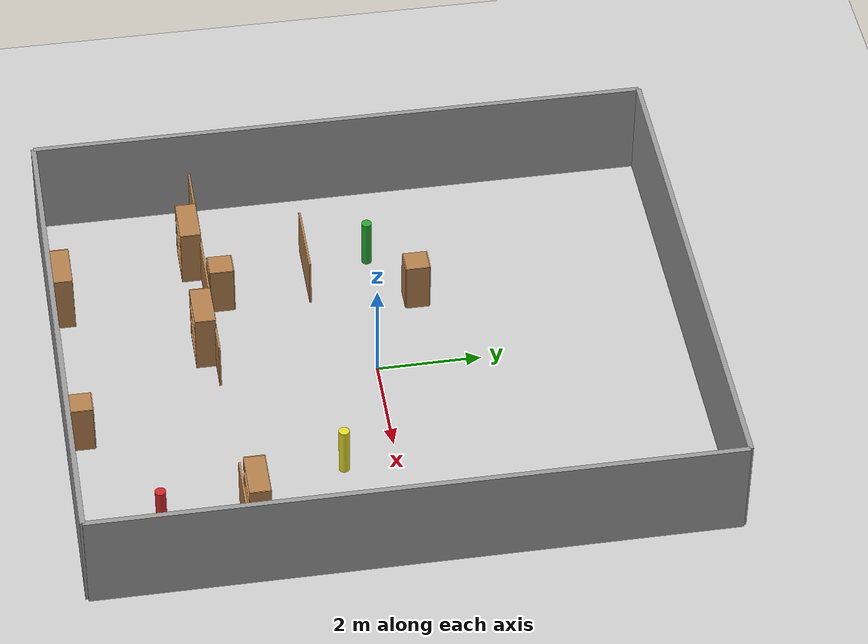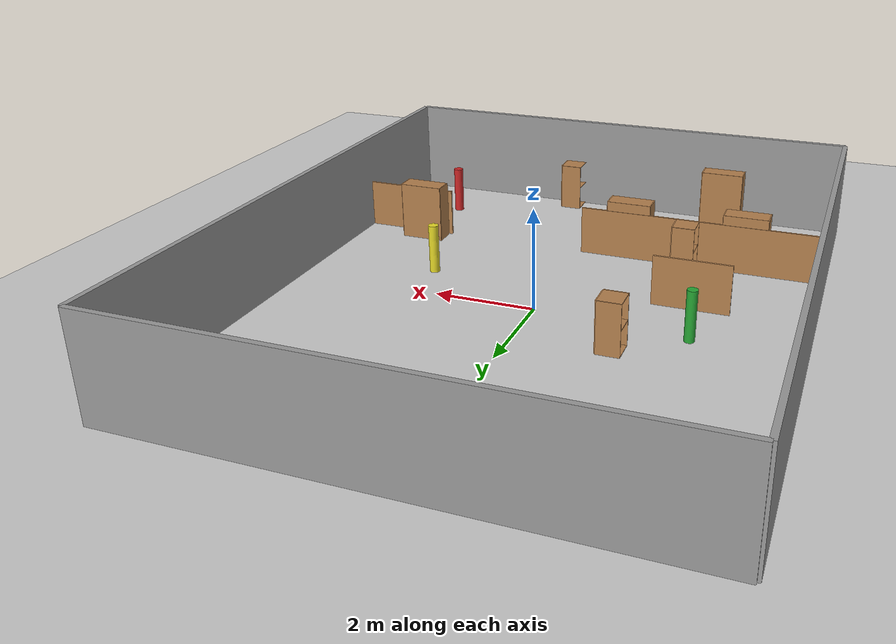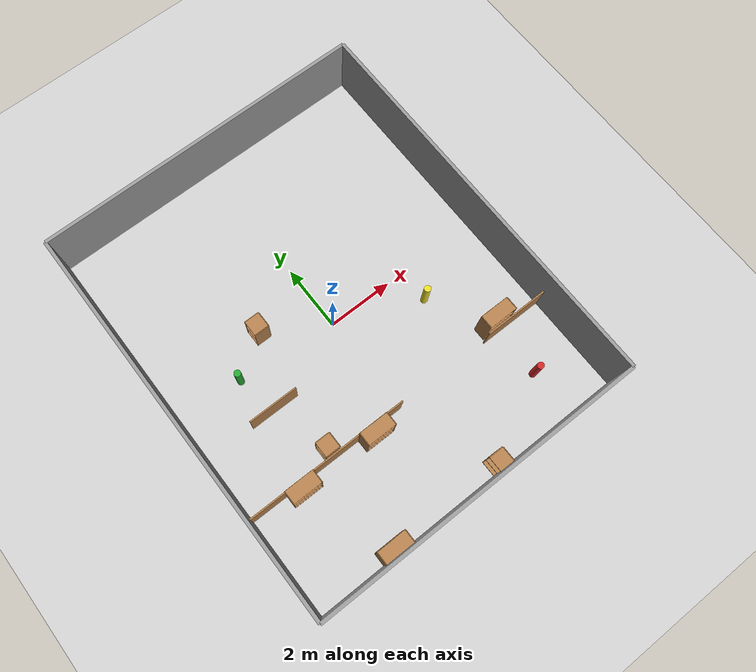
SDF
<sdf version="1.4">
 <world name="default">
  <model name="ground_plane">
   <static>1</static>
   <link name="link">
    <collision name="collision">
     <geometry><plane><normal>0 0 1</normal><size>50 50</size></plane></geometry>
     <surface><friction><ode><mu>100</mu><mu2>50</mu2></ode></friction></surface>
    </collision>
    <visual name="visual">
     <cast_shadows>0</cast_shadows>
     <geometry><plane><normal>0 0 1</normal><size>100 100</size></plane></geometry>
     <material>
      <script><uri>file://media/materials/scripts/gazebo.material</uri><name>Gazebo/Grey</name></script>
     </material>
    </visual>
    <velocity_decay><linear>0</linear><angular>0</angular></velocity_decay>
   </link>
  </model>
  <model name="target_cylinder_A">
   <pose>3.5 -4.5 0.5 0 -0 0</pose>
   <link name="link">
    <inertial>
     <mass>1</mass>
     <inertia><ixx>1</ixx><ixy>0</ixy><ixz>0</ixz><iyy>1</iyy><iyz>0</iyz><izz>1</izz></inertia>
    </inertial>
    <collision name="collision">
     <geometry><cylinder><radius>0.1</radius><length>1</length></cylinder></geometry>
    </collision>
    <visual name="visual">
     <geometry><cylinder><radius>0.1</radius><length>1</length></cylinder></geometry>
     <material>
      <script><uri>file://media/materials/scripts/gazebo.material</uri><name>Gazebo/Red</name></script>
     </material>
    </visual>
    <velocity_decay><linear>0</linear><angular>0</angular></velocity_decay>
   </link>
   <static>1</static>
  </model>
  <model name="target_cylinder_B">
   <pose>2.5 -1 0.5 0 -0 0</pose>
   <link name="link">
    <inertial>
     <mass>1</mass>
     <inertia><ixx>1</ixx><ixy>0</ixy><ixz>0</ixz><iyy>1</iyy><iyz>0</iyz><izz>1</izz></inertia>
    </inertial>
    <collision name="collision">
     <geometry><cylinder><radius>0.1</radius><length>1</length></cylinder></geometry>
    </collision>
    <visual name="visual">
     <geometry><cylinder><radius>0.1</radius><length>1</length></cylinder></geometry>
     <material>
      <script><uri>file://media/materials/scripts/gazebo.material</uri><name>Gazebo/Yellow</name></script>
     </material>
    </visual>
    <velocity_decay><linear>0</linear><angular>0</angular></velocity_decay>
   </link>
   <static>1</static>
  </model>
  <model name="target_cylinder_D">
   <pose>-3 0.25 0.5 0 -0 0</pose>
   <link name="link">
    <inertial>
     <mass>1</mass>
     <inertia><ixx>1</ixx><ixy>0</ixy><ixz>0</ixz><iyy>1</iyy><iyz>0</iyz><izz>1</izz></inertia>
    </inertial>
    <collision name="collision">
     <geometry><cylinder><radius>0.1</radius><length>1</length></cylinder></geometry>
    </collision>
    <visual name="visual">
     <geometry><cylinder><radius>0.1</radius><length>1</length></cylinder></geometry>
     <material>
      <script><uri>file://media/materials/scripts/gazebo.material</uri><name>Gazebo/Green</name></script>
     </material>
    </visual>
    <velocity_decay><linear>0</linear><angular>0</angular></velocity_decay>
   </link>
   <static>1</static>
  </model>
  <model name="grey_wall_1">
   <static>1</static>
   <link name="link">
    <pose>0 -6 1 0 -0 0</pose>
    <collision name="collision"><geometry><box><size>10 0.1 2</size></box></geometry></collision>
    <visual name="visual">
     <cast_shadows>0</cast_shadows>
     <geometry><box><size>10 0.1 2</size></box></geometry>
     <material>
      <script>
       <uri>model://grey_wall/materials/scripts</uri>
       <uri>model://grey_wall/materials/textures</uri>
       <name>vrc/grey_wall</name>
      </script>
     </material>
    </visual>
    <velocity_decay><linear>0</linear><angular>0</angular></velocity_decay>
   </link>
  </model>
  <model name="grey_wall_2">
   <static>1</static>
   <link name="link">
    <pose>0 6 1 0 -0 0</pose>
    <collision name="collision"><geometry><box><size>10 0.1 2</size></box></geometry></collision>
    <visual name="visual">
     <cast_shadows>0</cast_shadows>
     <geometry><box><size>10 0.1 2</size></box></geometry>
     <material>
      <script>
       <uri>model://grey_wall/materials/scripts</uri>
       <uri>model://grey_wall/materials/textures</uri>
       <name>vrc/grey_wall</name>
      </script>
     </material>
    </visual>
    <velocity_decay><linear>0</linear><angular>0</angular></velocity_decay>
   </link>
  </model>
  <model name="grey_wall_3">
   <static>1</static>
   <link name="link">
    <pose>-5 0 1 0 -0 1.571</pose>
    <collision name="collision"><geometry><box><size>12 0.1 2</size></box></geometry></collision>
    <visual name="visual">
     <cast_shadows>0</cast_shadows>
     <geometry><box><size>12 0.1 2</size></box></geometry>
     <material>
      <script>
       <uri>model://grey_wall/materials/scripts</uri>
       <uri>model://grey_wall/materials/textures</uri>
       <name>vrc/grey_wall</name>
      </script>
     </material>
    </visual>
    <velocity_decay><linear>0</linear><angular>0</angular></velocity_decay>
   </link>
  </model>
  <model name="grey_wall_4">
   <static>1</static>
   <link name="link">
    <pose>5 0 1 0 -0 1.571</pose>
    <collision name="collision"><geometry><box><size>12 0.1 2</size></box></geometry></collision>
    <visual name="visual">
     <cast_shadows>0</cast_shadows>
     <geometry><box><size>12 0.1 2</size></box></geometry>
     <material>
      <script>
       <uri>model://grey_wall/materials/scripts</uri>
       <uri>model://grey_wall/materials/textures</uri>
       <name>vrc/grey_wall</name>
      </script>
     </material>
    </visual>
    <velocity_decay><linear>0</linear><angular>0</angular></velocity_decay>
   </link>
  </model>
  <model name="high_wall_1">
   <pose>-2.5 -3 0.5 0 -0 0</pose>
   <link name="link">
    <inertial>
     <mass>1</mass>
     <inertia><ixx>1</ixx><ixy>0</ixy><ixz>0</ixz><iyy>1</iyy><iyz>0</iyz><izz>1</izz></inertia>
    </inertial>
    <collision name="collision"><geometry><box><size>5 0.04 1</size></box></geometry></collision>
    <visual name="visual">
     <geometry><box><size>5 0.04 1</size></box></geometry>
     <material>
      <script><uri>file://media/materials/scripts/gazebo.material</uri><name>Gazebo/Wood</name></script>
     </material>
    </visual>
    <velocity_decay><linear>0</linear><angular>0</angular></velocity_decay>
   </link>
   <static>1</static>
  </model>
  <model name="high_wall_2">
   <pose>4 -3 0.5 0 -0 0</pose>
   <link name="link">
    <inertial>
     <mass>1</mass>
     <inertia><ixx>1</ixx><ixy>0</ixy><ixz>0</ixz><iyy>1</iyy><iyz>0</iyz><izz>1</izz></inertia>
    </inertial>
    <collision name="collision"><geometry><box><size>2 0.04 1</size></box></geometry></collision>
    <visual name="visual">
     <geometry><box><size>2 0.04 1</size></box></geometry>
     <material>
      <script><uri>file://media/materials/scripts/gazebo.material</uri><name>Gazebo/Wood</name></script>
     </material>
    </visual>
    <velocity_decay><linear>0</linear><angular>0</angular></velocity_decay>
   </link>
   <static>1</static>
  </model>
  <model name="high_wall_5">
   <pose>-2.75 -1 0.5 0 -0 0</pose>
   <link name="link">
    <inertial>
     <mass>1</mass>
     <inertia><ixx>1</ixx><ixy>0</ixy><ixz>0</ixz><iyy>1</iyy><iyz>0</iyz><izz>1</izz></inertia>
    </inertial>
    <collision name="collision"><geometry><box><size>1.5 0.04 1</size></box></geometry></collision>
    <visual name="visual">
     <geometry><box><size>1.5 0.04 1</size></box></geometry>
     <material>
      <script><uri>file://media/materials/scripts/gazebo.material</uri><name>Gazebo/Wood</name></script>
     </material>
    </visual>
    <velocity_decay><linear>0</linear><angular>0</angular></velocity_decay>
   </link>
   <static>1</static>
  </model>
  <model name="bookshelf">
   <static>1</static>
   <link name="link">
    <inertial><mass>1</mass></inertial>
    <collision name="back">
     <pose>0 0.005 0.6 0 -0 0</pose>
     <geometry><box><size>0.9 0.01 1.2</size></box></geometry>
    </collision>
    <visual name="visual1">
     <pose>0 0.005 0.6 0 -0 0</pose>
     <geometry><box><size>0.9 0.01 1.2</size></box></geometry>
     <material>
      <script><uri>file://media/materials/scripts/gazebo.material</uri><name>Gazebo/Wood</name></script>
     </material>
    </visual>
    <collision name="left_side">
     <pose>0.45 -0.195 0.6 0 -0 0</pose>
     <geometry><box><size>0.02 0.4 1.2</size></box></geometry>
    </collision>
    <visual name="visual2">
     <pose>0.45 -0.195 0.6 0 -0 0</pose>
     <geometry><box><size>0.02 0.4 1.2</size></box></geometry>
     <material>
      <script><uri>file://media/materials/scripts/gazebo.material</uri><name>Gazebo/Wood</name></script>
     </material>
    </visual>
    <collision name="right_side">
     <pose>-0.45 -0.195 0.6 0 -0 0</pose>
     <geometry><box><size>0.02 0.4 1.2</size></box></geometry>
    </collision>
    <visual name="visual3">
     <pose>-0.45 -0.195 0.6 0 -0 0</pose>
     <geometry><box><size>0.02 0.4 1.2</size></box></geometry>
     <material>
      <script><uri>file://media/materials/scripts/gazebo.material</uri><name>Gazebo/Wood</name></script>
     </material>
    </visual>
    <collision name="bottom">
     <pose>0 -0.195 0.03 0 -0 0</pose>
     <geometry><box><size>0.88 0.4 0.06</size></box></geometry>
    </collision>
    <visual name="visual4">
     <pose>0 -0.195 0.03 0 -0 0</pose>
     <geometry><box><size>0.88 0.4 0.06</size></box></geometry>
     <material>
      <script><uri>file://media/materials/scripts/gazebo.material</uri><name>Gazebo/Wood</name></script>
     </material>
    </visual>
    <collision name="top">
     <pose>0 -0.195 1.19 0 -0 0</pose>
     <geometry><box><size>0.88 0.4 0.02</size></box></geometry>
    </collision>
    <visual name="visual5">
     <pose>0 -0.195 1.19 0 -0 0</pose>
     <geometry><box><size>0.88 0.4 0.02</size></box></geometry>
     <material>
      <script><uri>file://media/materials/scripts/gazebo.material</uri><name>Gazebo/Wood</name></script>
     </material>
    </visual>
    <collision name="low_shelf">
     <pose>0 -0.195 0.43 0 -0 0</pose>
     <geometry><box><size>0.88 0.4 0.02</size></box></geometry>
    </collision>
    <visual name="visual6">
     <pose>0 -0.195 0.43 0 -0 0</pose>
     <geometry><box><size>0.88 0.4 0.02</size></box></geometry>
     <material>
      <script><uri>file://media/materials/scripts/gazebo.material</uri><name>Gazebo/Wood</name></script>
     </material>
    </visual>
    <collision name="high_shelf">
     <pose>0 -0.195 0.8 0 -0 0</pose>
     <geometry><box><size>0.88 0.4 0.02</size></box></geometry>
    </collision>
    <visual name="visual7">
     <pose>0 -0.195 0.8 0 -0 0</pose>
     <geometry><box><size>0.88 0.4 0.02</size></box></geometry>
     <material>
      <script><uri>file://media/materials/scripts/gazebo.material</uri><name>Gazebo/Wood</name></script>
     </material>
    </visual>
    <velocity_decay><linear>0</linear><angular>0</angular></velocity_decay>
   </link>
   <pose>-3.40176 -3 0 0 -0 0</pose>
  </model>
  <model name="bookshelf_0">
   <static>1</static>
   <link name="link">
    <inertial><mass>1</mass></inertial>
    <collision name="back">
     <pose>0 0.005 0.6 0 -0 0</pose>
     <geometry><box><size>0.9 0.01 1.2</size></box></geometry>
    </collision>
    <visual name="visual1">
     <pose>0 0.005 0.6 0 -0 0</pose>
     <geometry><box><size>0.9 0.01 1.2</size></box></geometry>
     <material>
      <script><uri>file://media/materials/scripts/gazebo.material</uri><name>Gazebo/Wood</name></script>
     </material>
    </visual>
    <collision name="left_side">
     <pose>0.45 -0.195 0.6 0 -0 0</pose>
     <geometry><box><size>0.02 0.4 1.2</size></box></geometry>
    </collision>
    <visual name="visual2">
     <pose>0.45 -0.195 0.6 0 -0 0</pose>
     <geometry><box><size>0.02 0.4 1.2</size></box></geometry>
     <material>
      <script><uri>file://media/materials/scripts/gazebo.material</uri><name>Gazebo/Wood</name></script>
     </material>
    </visual>
    <collision name="right_side">
     <pose>-0.45 -0.195 0.6 0 -0 0</pose>
     <geometry><box><size>0.02 0.4 1.2</size></box></geometry>
    </collision>
    <visual name="visual3">
     <pose>-0.45 -0.195 0.6 0 -0 0</pose>
     <geometry><box><size>0.02 0.4 1.2</size></box></geometry>
     <material>
      <script><uri>file://media/materials/scripts/gazebo.material</uri><name>Gazebo/Wood</name></script>
     </material>
    </visual>
    <collision name="bottom">
     <pose>0 -0.195 0.03 0 -0 0</pose>
     <geometry><box><size>0.88 0.4 0.06</size></box></geometry>
    </collision>
    <visual name="visual4">
     <pose>0 -0.195 0.03 0 -0 0</pose>
     <geometry><box><size>0.88 0.4 0.06</size></box></geometry>
     <material>
      <script><uri>file://media/materials/scripts/gazebo.material</uri><name>Gazebo/Wood</name></script>
     </material>
    </visual>
    <collision name="top">
     <pose>0 -0.195 1.19 0 -0 0</pose>
     <geometry><box><size>0.88 0.4 0.02</size></box></geometry>
    </collision>
    <visual name="visual5">
     <pose>0 -0.195 1.19 0 -0 0</pose>
     <geometry><box><size>0.88 0.4 0.02</size></box></geometry>
     <material>
      <script><uri>file://media/materials/scripts/gazebo.material</uri><name>Gazebo/Wood</name></script>
     </material>
    </visual>
    <collision name="low_shelf">
     <pose>0 -0.195 0.43 0 -0 0</pose>
     <geometry><box><size>0.88 0.4 0.02</size></box></geometry>
    </collision>
    <visual name="visual6">
     <pose>0 -0.195 0.43 0 -0 0</pose>
     <geometry><box><size>0.88 0.4 0.02</size></box></geometry>
     <material>
      <script><uri>file://media/materials/scripts/gazebo.material</uri><name>Gazebo/Wood</name></script>
     </material>
    </visual>
    <collision name="high_shelf">
     <pose>0 -0.195 0.8 0 -0 0</pose>
     <geometry><box><size>0.88 0.4 0.02</size></box></geometry>
    </collision>
    <visual name="visual7">
     <pose>0 -0.195 0.8 0 -0 0</pose>
     <geometry><box><size>0.88 0.4 0.02</size></box></geometry>
     <material>
      <script><uri>file://media/materials/scripts/gazebo.material</uri><name>Gazebo/Wood</name></script>
     </material>
    </visual>
    <velocity_decay><linear>0</linear><angular>0</angular></velocity_decay>
   </link>
   <pose>-1 -3 0 0 -0 0</pose>
  </model>
  <model name="cabinet">
   <static>1</static>
   <link name="cabinet_bottom_plate">
    <inertial>
     <pose>0 0 -1 0 -0 0</pose>
     <inertia><ixx>2.05</ixx><ixy>0</ixy><ixz>0</ixz><iyy>2.05</iyy><iyz>0</iyz><izz>2.05</izz></inertia>
     <mass>25</mass>
    </inertial>
    <collision name="cabinet_bottom_plate_geom">
     <pose>0 0 0.01 0 -0 0</pose>
     <geometry><box><size>0.45 0.45 0.02</size></box></geometry>
    </collision>
    <visual name="cabinet_bottom_plate_geom_visual">
     <pose>0 0 0.01 0 -0 0</pose>
     <geometry><box><size>0.45 0.45 0.02</size></box></geometry>
     <material>
      <script><uri>file://media/materials/scripts/gazebo.material</uri><name>Gazebo/Wood</name></script>
     </material>
    </visual>
    <collision name="cabinet_bottom_plate_geom_cabinet_back_plate">
     <pose>0.235 0 0.51 0 -0 0</pose>
     <geometry><box><size>0.02 0.45 1.02</size></box></geometry>
    </collision>
    <visual name="cabinet_bottom_plate_geom_cabinet_back_plate_visual">
     <pose>0.235 0 0.51 0 -0 0</pose>
     <geometry><box><size>0.02 0.45 1.02</size></box></geometry>
     <material>
      <script><uri>file://media/materials/scripts/gazebo.material</uri><name>Gazebo/Wood</name></script>
     </material>
    </visual>
    <collision name="cabinet_bottom_plate_geom_cabinet_left_plate">
     <pose>0 0.235 0.51 0 -0 0</pose>
     <geometry><box><size>0.45 0.02 1.02</size></box></geometry>
    </collision>
    <visual name="cabinet_bottom_plate_geom_cabinet_left_plate_visual">
     <pose>0 0.235 0.51 0 -0 0</pose>
     <geometry><box><size>0.45 0.02 1.02</size></box></geometry>
     <material>
      <script><uri>file://media/materials/scripts/gazebo.material</uri><name>Gazebo/Wood</name></script>
     </material>
    </visual>
    <collision name="cabinet_bottom_plate_geom_cabinet_middle_plate">
     <pose>0 0 0.51 0 -0 0</pose>
     <geometry><box><size>0.45 0.45 0.02</size></box></geometry>
    </collision>
    <visual name="cabinet_bottom_plate_geom_cabinet_middle_plate_visual">
     <pose>0 0 0.51 0 -0 0</pose>
     <geometry><box><size>0.45 0.45 0.02</size></box></geometry>
     <material>
      <script><uri>file://media/materials/scripts/gazebo.material</uri><name>Gazebo/Wood</name></script>
     </material>
    </visual>
    <collision name="cabinet_bottom_plate_geom_cabinet_right_plate">
     <pose>0 -0.235 0.51 0 -0 0</pose>
     <geometry><box><size>0.45 0.02 1.02</size></box></geometry>
    </collision>
    <visual name="cabinet_bottom_plate_geom_cabinet_right_plate_visual">
     <pose>0 -0.235 0.51 0 -0 0</pose>
     <geometry><box><size>0.45 0.02 1.02</size></box></geometry>
     <material>
      <script><uri>file://media/materials/scripts/gazebo.material</uri><name>Gazebo/Wood</name></script>
     </material>
    </visual>
    <collision name="cabinet_bottom_plate_geom_cabinet_top_plate">
     <pose>0 0 1.01 0 -0 0</pose>
     <geometry><box><size>0.45 0.45 0.02</size></box></geometry>
    </collision>
    <visual name="cabinet_bottom_plate_geom_cabinet_top_plate_visual">
     <pose>0 0 1.01 0 -0 0</pose>
     <geometry><box><size>0.45 0.45 0.02</size></box></geometry>
     <material>
      <script><uri>file://media/materials/scripts/gazebo.material</uri><name>Gazebo/Wood</name></script>
     </material>
    </visual>
    <velocity_decay><linear>0</linear><angular>0</angular></velocity_decay>
   </link>
   <pose>1.04561 -5.73435 0 0 -0 0</pose>
  </model>
  <model name="cabinet_0">
   <static>1</static>
   <link name="cabinet_bottom_plate">
    <inertial>
     <pose>0 0 -1 0 -0 0</pose>
     <inertia><ixx>2.05</ixx><ixy>0</ixy><ixz>0</ixz><iyy>2.05</iyy><iyz>0</iyz><izz>2.05</izz></inertia>
     <mass>25</mass>
    </inertial>
    <collision name="cabinet_bottom_plate_geom">
     <pose>0 0 0.01 0 -0 0</pose>
     <geometry><box><size>0.45 0.45 0.02</size></box></geometry>
    </collision>
    <visual name="cabinet_bottom_plate_geom_visual">
     <pose>0 0 0.01 0 -0 0</pose>
     <geometry><box><size>0.45 0.45 0.02</size></box></geometry>
     <material>
      <script><uri>file://media/materials/scripts/gazebo.material</uri><name>Gazebo/Wood</name></script>
     </material>
    </visual>
    <collision name="cabinet_bottom_plate_geom_cabinet_back_plate">
     <pose>0.235 0 0.51 0 -0 0</pose>
     <geometry><box><size>0.02 0.45 1.02</size></box></geometry>
    </collision>
    <visual name="cabinet_bottom_plate_geom_cabinet_back_plate_visual">
     <pose>0.235 0 0.51 0 -0 0</pose>
     <geometry><box><size>0.02 0.45 1.02</size></box></geometry>
     <material>
      <script><uri>file://media/materials/scripts/gazebo.material</uri><name>Gazebo/Wood</name></script>
     </material>
    </visual>
    <collision name="cabinet_bottom_plate_geom_cabinet_left_plate">
     <pose>0 0.235 0.51 0 -0 0</pose>
     <geometry><box><size>0.45 0.02 1.02</size></box></geometry>
    </collision>
    <visual name="cabinet_bottom_plate_geom_cabinet_left_plate_visual">
     <pose>0 0.235 0.51 0 -0 0</pose>
     <geometry><box><size>0.45 0.02 1.02</size></box></geometry>
     <material>
      <script><uri>file://media/materials/scripts/gazebo.material</uri><name>Gazebo/Wood</name></script>
     </material>
    </visual>
    <collision name="cabinet_bottom_plate_geom_cabinet_middle_plate">
     <pose>0 0 0.51 0 -0 0</pose>
     <geometry><box><size>0.45 0.45 0.02</size></box></geometry>
    </collision>
    <visual name="cabinet_bottom_plate_geom_cabinet_middle_plate_visual">
     <pose>0 0 0.51 0 -0 0</pose>
     <geometry><box><size>0.45 0.45 0.02</size></box></geometry>
     <material>
      <script><uri>file://media/materials/scripts/gazebo.material</uri><name>Gazebo/Wood</name></script>
     </material>
    </visual>
    <collision name="cabinet_bottom_plate_geom_cabinet_right_plate">
     <pose>0 -0.235 0.51 0 -0 0</pose>
     <geometry><box><size>0.45 0.02 1.02</size></box></geometry>
    </collision>
    <visual name="cabinet_bottom_plate_geom_cabinet_right_plate_visual">
     <pose>0 -0.235 0.51 0 -0 0</pose>
     <geometry><box><size>0.45 0.02 1.02</size></box></geometry>
     <material>
      <script><uri>file://media/materials/scripts/gazebo.material</uri><name>Gazebo/Wood</name></script>
     </material>
    </visual>
    <collision name="cabinet_bottom_plate_geom_cabinet_top_plate">
     <pose>0 0 1.01 0 -0 0</pose>
     <geometry><box><size>0.45 0.45 0.02</size></box></geometry>
    </collision>
    <visual name="cabinet_bottom_plate_geom_cabinet_top_plate_visual">
     <pose>0 0 1.01 0 -0 0</pose>
     <geometry><box><size>0.45 0.45 0.02</size></box></geometry>
     <material>
      <script><uri>file://media/materials/scripts/gazebo.material</uri><name>Gazebo/Wood</name></script>
     </material>
    </visual>
    <velocity_decay><linear>0</linear><angular>0</angular></velocity_decay>
   </link>
   <pose>-1.79599 1.03535 0 0 -0 0</pose>
  </model>
  <model name="cabinet_2">
   <static>1</static>
   <link name="cabinet_bottom_plate">
    <inertial>
     <pose>0 0 -1 0 -0 0</pose>
     <inertia><ixx>2.05</ixx><ixy>0</ixy><ixz>0</ixz><iyy>2.05</iyy><iyz>0</iyz><izz>2.05</izz></inertia>
     <mass>25</mass>
    </inertial>
    <collision name="cabinet_bottom_plate_geom">
     <pose>0 0 0.01 0 -0 0</pose>
     <geometry><box><size>0.45 0.45 0.02</size></box></geometry>
    </collision>
    <visual name="cabinet_bottom_plate_geom_visual">
     <pose>0 0 0.01 0 -0 0</pose>
     <geometry><box><size>0.45 0.45 0.02</size></box></geometry>
     <material>
      <script><uri>file://media/materials/scripts/gazebo.material</uri><name>Gazebo/Wood</name></script>
     </material>
    </visual>
    <collision name="cabinet_bottom_plate_geom_cabinet_back_plate">
     <pose>0.235 0 0.51 0 -0 0</pose>
     <geometry><box><size>0.02 0.45 1.02</size></box></geometry>
    </collision>
    <visual name="cabinet_bottom_plate_geom_cabinet_back_plate_visual">
     <pose>0.235 0 0.51 0 -0 0</pose>
     <geometry><box><size>0.02 0.45 1.02</size></box></geometry>
     <material>
      <script><uri>file://media/materials/scripts/gazebo.material</uri><name>Gazebo/Wood</name></script>
     </material>
    </visual>
    <collision name="cabinet_bottom_plate_geom_cabinet_left_plate">
     <pose>0 0.235 0.51 0 -0 0</pose>
     <geometry><box><size>0.45 0.02 1.02</size></box></geometry>
    </collision>
    <visual name="cabinet_bottom_plate_geom_cabinet_left_plate_visual">
     <pose>0 0.235 0.51 0 -0 0</pose>
     <geometry><box><size>0.45 0.02 1.02</size></box></geometry>
     <material>
      <script><uri>file://media/materials/scripts/gazebo.material</uri><name>Gazebo/Wood</name></script>
     </material>
    </visual>
    <collision name="cabinet_bottom_plate_geom_cabinet_middle_plate">
     <pose>0 0 0.51 0 -0 0</pose>
     <geometry><box><size>0.45 0.45 0.02</size></box></geometry>
    </collision>
    <visual name="cabinet_bottom_plate_geom_cabinet_middle_plate_visual">
     <pose>0 0 0.51 0 -0 0</pose>
     <geometry><box><size>0.45 0.45 0.02</size></box></geometry>
     <material>
      <script><uri>file://media/materials/scripts/gazebo.material</uri><name>Gazebo/Wood</name></script>
     </material>
    </visual>
    <collision name="cabinet_bottom_plate_geom_cabinet_right_plate">
     <pose>0 -0.235 0.51 0 -0 0</pose>
     <geometry><box><size>0.45 0.02 1.02</size></box></geometry>
    </collision>
    <visual name="cabinet_bottom_plate_geom_cabinet_right_plate_visual">
     <pose>0 -0.235 0.51 0 -0 0</pose>
     <geometry><box><size>0.45 0.02 1.02</size></box></geometry>
     <material>
      <script><uri>file://media/materials/scripts/gazebo.material</uri><name>Gazebo/Wood</name></script>
     </material>
    </visual>
    <collision name="cabinet_bottom_plate_geom_cabinet_top_plate">
     <pose>0 0 1.01 0 -0 0</pose>
     <geometry><box><size>0.45 0.45 0.02</size></box></geometry>
    </collision>
    <visual name="cabinet_bottom_plate_geom_cabinet_top_plate_visual">
     <pose>0 0 1.01 0 -0 0</pose>
     <geometry><box><size>0.45 0.45 0.02</size></box></geometry>
     <material>
      <script><uri>file://media/materials/scripts/gazebo.material</uri><name>Gazebo/Wood</name></script>
     </material>
    </visual>
    <velocity_decay><linear>0</linear><angular>0</angular></velocity_decay>
   </link>
   <pose>-2.2602 -2.70722 0 0 -0 0</pose>
  </model>
  <model name="bookshelf_4">
   <static>1</static>
   <link name="link">
    <inertial><mass>1</mass></inertial>
    <collision name="back">
     <pose>0 0.005 0.6 0 -0 0</pose>
     <geometry><box><size>0.9 0.01 1.2</size></box></geometry>
    </collision>
    <visual name="visual1">
     <pose>0 0.005 0.6 0 -0 0</pose>
     <geometry><box><size>0.9 0.01 1.2</size></box></geometry>
     <material>
      <script><uri>file://media/materials/scripts/gazebo.material</uri><name>Gazebo/Wood</name></script>
     </material>
    </visual>
    <collision name="left_side">
     <pose>0.45 -0.195 0.6 0 -0 0</pose>
     <geometry><box><size>0.02 0.4 1.2</size></box></geometry>
    </collision>
    <visual name="visual2">
     <pose>0.45 -0.195 0.6 0 -0 0</pose>
     <geometry><box><size>0.02 0.4 1.2</size></box></geometry>
     <material>
      <script><uri>file://media/materials/scripts/gazebo.material</uri><name>Gazebo/Wood</name></script>
     </material>
    </visual>
    <collision name="right_side">
     <pose>-0.45 -0.195 0.6 0 -0 0</pose>
     <geometry><box><size>0.02 0.4 1.2</size></box></geometry>
    </collision>
    <visual name="visual3">
     <pose>-0.45 -0.195 0.6 0 -0 0</pose>
     <geometry><box><size>0.02 0.4 1.2</size></box></geometry>
     <material>
      <script><uri>file://media/materials/scripts/gazebo.material</uri><name>Gazebo/Wood</name></script>
     </material>
    </visual>
    <collision name="bottom">
     <pose>0 -0.195 0.03 0 -0 0</pose>
     <geometry><box><size>0.88 0.4 0.06</size></box></geometry>
    </collision>
    <visual name="visual4">
     <pose>0 -0.195 0.03 0 -0 0</pose>
     <geometry><box><size>0.88 0.4 0.06</size></box></geometry>
     <material>
      <script><uri>file://media/materials/scripts/gazebo.material</uri><name>Gazebo/Wood</name></script>
     </material>
    </visual>
    <collision name="top">
     <pose>0 -0.195 1.19 0 -0 0</pose>
     <geometry><box><size>0.88 0.4 0.02</size></box></geometry>
    </collision>
    <visual name="visual5">
     <pose>0 -0.195 1.19 0 -0 0</pose>
     <geometry><box><size>0.88 0.4 0.02</size></box></geometry>
     <material>
      <script><uri>file://media/materials/scripts/gazebo.material</uri><name>Gazebo/Wood</name></script>
     </material>
    </visual>
    <collision name="low_shelf">
     <pose>0 -0.195 0.43 0 -0 0</pose>
     <geometry><box><size>0.88 0.4 0.02</size></box></geometry>
    </collision>
    <visual name="visual6">
     <pose>0 -0.195 0.43 0 -0 0</pose>
     <geometry><box><size>0.88 0.4 0.02</size></box></geometry>
     <material>
      <script><uri>file://media/materials/scripts/gazebo.material</uri><name>Gazebo/Wood</name></script>
     </material>
    </visual>
    <collision name="high_shelf">
     <pose>0 -0.195 0.8 0 -0 0</pose>
     <geometry><box><size>0.88 0.4 0.02</size></box></geometry>
    </collision>
    <visual name="visual7">
     <pose>0 -0.195 0.8 0 -0 0</pose>
     <geometry><box><size>0.88 0.4 0.02</size></box></geometry>
     <material>
      <script><uri>file://media/materials/scripts/gazebo.material</uri><name>Gazebo/Wood</name></script>
     </material>
    </visual>
    <velocity_decay><linear>0</linear><angular>0</angular></velocity_decay>
   </link>
   <pose>3.52294 -2.5395 0 0 -0 0</pose>
  </model>
  <model name="bookshelf_5">
   <static>1</static>
   <link name="link">
    <inertial><mass>1</mass></inertial>
    <collision name="back">
     <pose>0 0.005 0.6 0 -0 0</pose>
     <geometry><box><size>0.9 0.01 1.2</size></box></geometry>
    </collision>
    <visual name="visual1">
     <pose>0 0.005 0.6 0 -0 0</pose>
     <geometry><box><size>0.9 0.01 1.2</size></box></geometry>
     <material>
      <script><uri>file://media/materials/scripts/gazebo.material</uri><name>Gazebo/Wood</name></script>
     </material>
    </visual>
    <collision name="left_side">
     <pose>0.45 -0.195 0.6 0 -0 0</pose>
     <geometry><box><size>0.02 0.4 1.2</size></box></geometry>
    </collision>
    <visual name="visual2">
     <pose>0.45 -0.195 0.6 0 -0 0</pose>
     <geometry><box><size>0.02 0.4 1.2</size></box></geometry>
     <material>
      <script><uri>file://media/materials/scripts/gazebo.material</uri><name>Gazebo/Wood</name></script>
     </material>
    </visual>
    <collision name="right_side">
     <pose>-0.45 -0.195 0.6 0 -0 0</pose>
     <geometry><box><size>0.02 0.4 1.2</size></box></geometry>
    </collision>
    <visual name="visual3">
     <pose>-0.45 -0.195 0.6 0 -0 0</pose>
     <geometry><box><size>0.02 0.4 1.2</size></box></geometry>
     <material>
      <script><uri>file://media/materials/scripts/gazebo.material</uri><name>Gazebo/Wood</name></script>
     </material>
    </visual>
    <collision name="bottom">
     <pose>0 -0.195 0.03 0 -0 0</pose>
     <geometry><box><size>0.88 0.4 0.06</size></box></geometry>
    </collision>
    <visual name="visual4">
     <pose>0 -0.195 0.03 0 -0 0</pose>
     <geometry><box><size>0.88 0.4 0.06</size></box></geometry>
     <material>
      <script><uri>file://media/materials/scripts/gazebo.material</uri><name>Gazebo/Wood</name></script>
     </material>
    </visual>
    <collision name="top">
     <pose>0 -0.195 1.19 0 -0 0</pose>
     <geometry><box><size>0.88 0.4 0.02</size></box></geometry>
    </collision>
    <visual name="visual5">
     <pose>0 -0.195 1.19 0 -0 0</pose>
     <geometry><box><size>0.88 0.4 0.02</size></box></geometry>
     <material>
      <script><uri>file://media/materials/scripts/gazebo.material</uri><name>Gazebo/Wood</name></script>
     </material>
    </visual>
    <collision name="low_shelf">
     <pose>0 -0.195 0.43 0 -0 0</pose>
     <geometry><box><size>0.88 0.4 0.02</size></box></geometry>
    </collision>
    <visual name="visual6">
     <pose>0 -0.195 0.43 0 -0 0</pose>
     <geometry><box><size>0.88 0.4 0.02</size></box></geometry>
     <material>
      <script><uri>file://media/materials/scripts/gazebo.material</uri><name>Gazebo/Wood</name></script>
     </material>
    </visual>
    <collision name="high_shelf">
     <pose>0 -0.195 0.8 0 -0 0</pose>
     <geometry><box><size>0.88 0.4 0.02</size></box></geometry>
    </collision>
    <visual name="visual7">
     <pose>0 -0.195 0.8 0 -0 0</pose>
     <geometry><box><size>0.88 0.4 0.02</size></box></geometry>
     <material>
      <script><uri>file://media/materials/scripts/gazebo.material</uri><name>Gazebo/Wood</name></script>
     </material>
    </visual>
    <velocity_decay><linear>0</linear><angular>0</angular></velocity_decay>
   </link>
   <pose>-2.47848 -5.56981 0 0 -0 0</pose>
  </model>
 </world>
</sdf>
